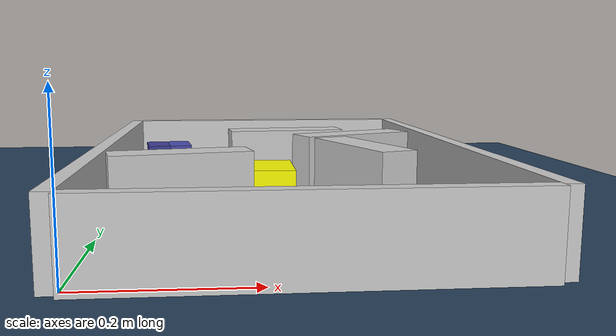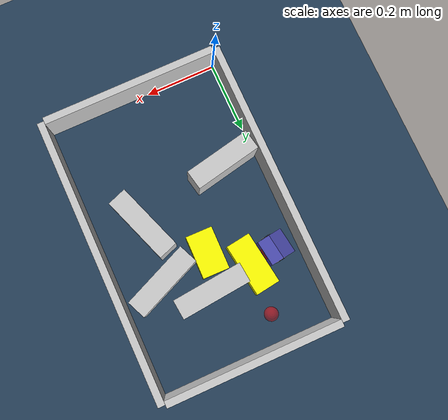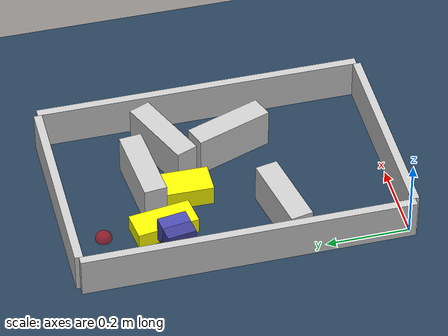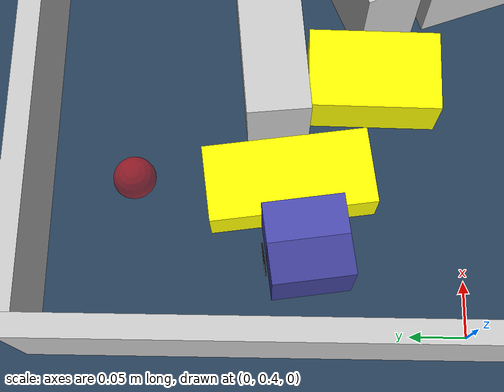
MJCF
<?xml version='1.0' encoding='utf-8'?>
<mujoco model="real_buildable">
  <compiler angle="degree" />
  <option timestep="0.002" integrator="implicitfast" iterations="100" cone="elliptic" />
  <default>
    <geom density="1" />
  </default>
  <asset>
    <texture builtin="gradient" height="3072" rgb1="0.3 0.5 0.7" rgb2="0 0 0" type="skybox" width="512" />
    <texture builtin="checker" height="300" mark="edge" markrgb="0.8 0.8 0.8" name="groundplane" rgb1="0.2 0.3 0.4" rgb2="0.1 0.2 0.3" type="2d" width="300" />
    <material name="groundplane" reflectance="0.2" texrepeat="5 5" texture="groundplane" texuniform="true" />
  </asset>
  <worldbody>
    <light dir="0 0 -1" directional="true" pos="0 0 1.5" />
    <geom name="floor" type="plane" condim="4" friction="0.5 0.005 0.001" material="groundplane" size="0 0 0.05" />
    <body name="walls">
      <geom name="wall_boundary_left" type="box" condim="4" friction="1.0 0.005 0.0001" rgba="0.8 0.8 0.8 1" pos="-0.010000 0.387500 0.050000" euler="0 0 0.000000" size="0.010000 0.397500 0.050000" />
      <geom name="wall_boundary_right" type="box" condim="4" friction="1.0 0.005 0.0001" rgba="0.8 0.8 0.8 1" pos="0.500000 0.387500 0.050000" euler="0 0 0.000000" size="0.010000 0.397500 0.050000" />
      <geom name="wall_boundary_bottom" type="box" condim="4" friction="1.0 0.005 0.0001" rgba="0.8 0.8 0.8 1" pos="0.245000 -0.010000 0.050000" euler="0 0 0.000000" size="0.245000 0.010000 0.050000" />
      <geom name="wall_boundary_top" type="box" condim="4" friction="1.0 0.005 0.0001" rgba="0.8 0.8 0.8 1" pos="0.245000 0.785000 0.050000" euler="0 0 0.000000" size="0.245000 0.010000 0.050000" />
      <geom name="wall_inner_1" type="box" condim="4" friction="1.0 0.005 0.0001" rgba="0.8 0.8 0.8 1" pos="0.101000 0.278000 0.050000" euler="0 0 11.400000" size="0.095000 0.027500 0.050000" />
      <geom name="wall_inner_2" type="box" condim="4" friction="1.0 0.005 0.0001" rgba="0.8 0.8 0.8 1" pos="0.361000 0.346000 0.050000" euler="0 0 109.700000" size="0.097500 0.027500 0.050000" />
      <geom name="wall_inner_3" type="box" condim="4" friction="1.0 0.005 0.0001" rgba="0.8 0.8 0.8 1" pos="0.269000 0.577000 0.050000" euler="0 0 5.500000" size="0.097500 0.027500 0.050000" />
      <geom name="wall_inner_4" type="box" condim="4" friction="1.0 0.005 0.0001" rgba="0.8 0.8 0.8 1" pos="0.374000 0.504000 0.050000" euler="0 0 23.200000" size="0.097500 0.027500 0.050000" />
    </body>
    <body name="car" pos="0.067912633043885076 0.54198086274732959 0.01" quat="0.99752876878632402 0 0 0.070259201843178867">
      <freejoint name="car_freejoint" />
      <inertial pos="0 0 0.0375" mass="0.35" diaginertia="0.000266 0.000266 0.000286" />
      <geom name="front_chassis_collision" type="box" pos="0.0175 0 0.0375" size="0.0175 0.035 0.0325" rgba="0.3 0.3 0.7 1" />
      <geom name="rear_chassis_collision" type="box" pos="-0.0175 0 0.0375" size="0.0175 0.035 0.0325" rgba="0.25 0.25 0.6 1" />
      <geom name="front_marker" type="box" pos="0.034 0 0.0505" size="0.002 0.015 0.01" rgba="1 0.2 0.2 1" contype="0" conaffinity="0" />
      <body name="rear_support_body" pos="-0.03 0 0.0025">
        <joint name="rear_caster_joint" type="ball" damping="0.0001" />
        <inertial pos="0 0 0" mass="0.025" diaginertia="0.000001 0.000001 0.000001" />
        <geom name="rear_support" type="sphere" pos="0 0 0" size="0.0025" friction="0 0 0" rgba="0.7 0.1 0.1 1" />
      </body>
      <body name="front_support_body" pos="0.03 0 0.0025">
        <joint name="front_caster_joint" type="ball" damping="0.0001" />
        <inertial pos="0 0 0" mass="0.025" diaginertia="0.000001 0.000001 0.000001" />
        <geom name="front_support" type="sphere" pos="0 0 0" size="0.0025" friction="0 0 0" rgba="0.1 0.7 0.1 1" />
      </body>
      <body name="left_wheel" pos="0 0.0375 0.015">
        <inertial pos="0 0 0" mass="0.05" diaginertia="0.000003 0.000006 0.000003" />
        <joint name="left_wheel_joint" type="hinge" axis="0 1 0" damping="0.01" armature="0.0001" />
        <geom name="left_wheel_collision" type="cylinder" size="0.015 0.0005" euler="90 0 0" rgba="0.1 0.1 0.1 1" />
      </body>
      <body name="right_wheel" pos="0 -0.0375 0.015">
        <inertial pos="0 0 0" mass="0.05" diaginertia="0.000003 0.000006 0.000003" />
        <joint name="right_wheel_joint" type="hinge" axis="0 1 0" damping="0.01" armature="0.0001" />
        <geom name="right_wheel_collision" type="cylinder" size="0.015 0.0005" euler="90 0 0" rgba="0.1 0.1 0.1 1" />
      </body>
    </body>
    <body name="obstacle_0_movable">
      <geom name="obstacle_0_movable" condim="4" pos="0.23562486856419035 0.48078560901765116 0.025000000000000001" friction="1 0.005 0.0001" rgba="1 1 0 1" size="0.037500 0.060000 0.025000" type="box" mass="0.1" quat="0.99996696821245534 0 0 -0.0081278831186370713" />
      <joint type="free" />
    </body>
    <body name="obstacle_1_movable">
      <geom name="obstacle_1_movable" condim="4" pos="0.13713705938622828 0.55745136945491036 0.02" friction="1 0.005 0.0001" rgba="1 1 0 1" size="0.035000 0.075000 0.020000" type="box" mass="0.1" quat="0.99763289196124472 0 0 0.068764910216209882" />
      <joint type="free" />
    </body>
    <site name="goal" type="sphere" pos="0.144000 0.700000 0.0" size="0.02" rgba="1 0 0 0.5" />
  </worldbody>
  <actuator>
    <velocity name="left_wheel_drive" joint="left_wheel_joint" ctrlrange="-25 25" kv="0.75" forcerange="-0.5 0.5" />
    <velocity name="right_wheel_drive" joint="right_wheel_joint" ctrlrange="-25 25" kv="0.75" forcerange="-0.5 0.5" />
  </actuator>
</mujoco>
